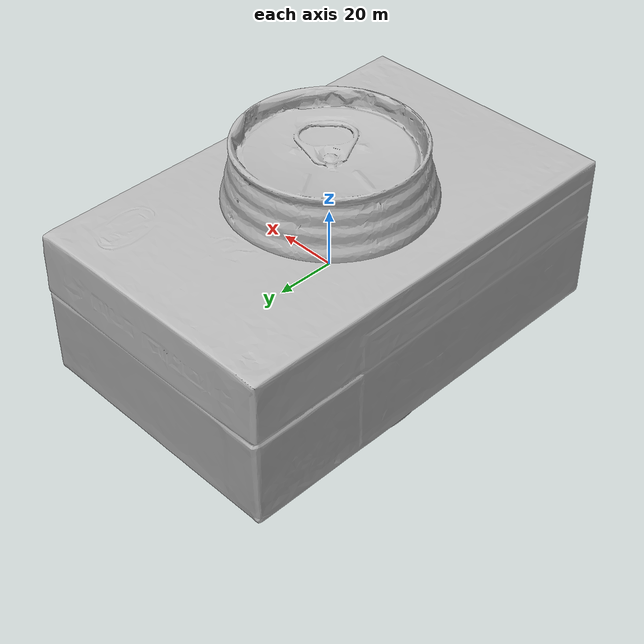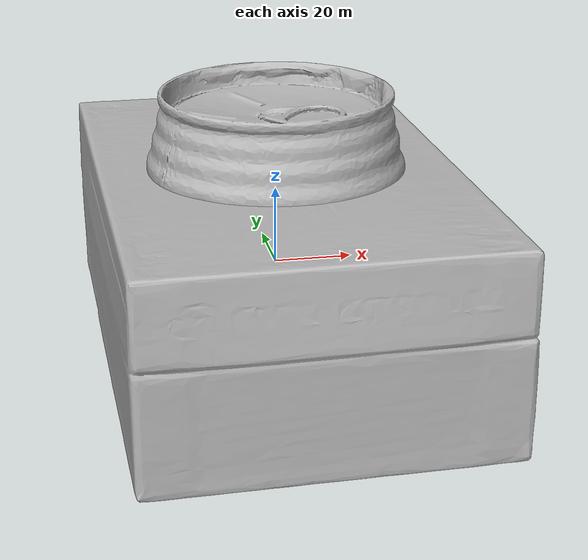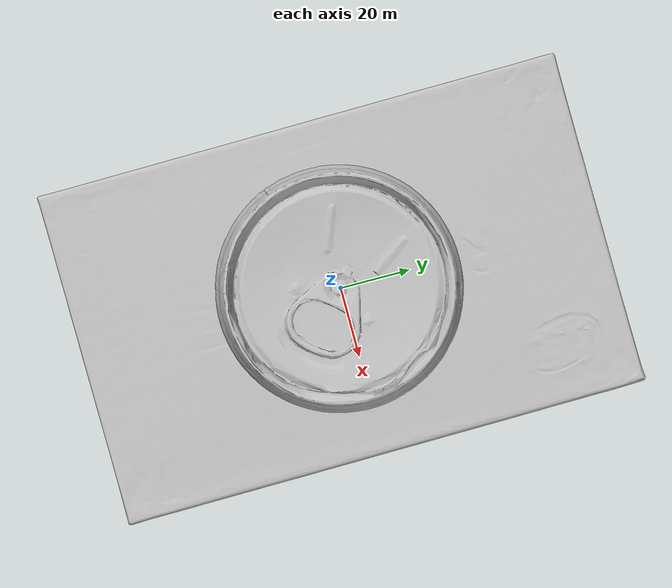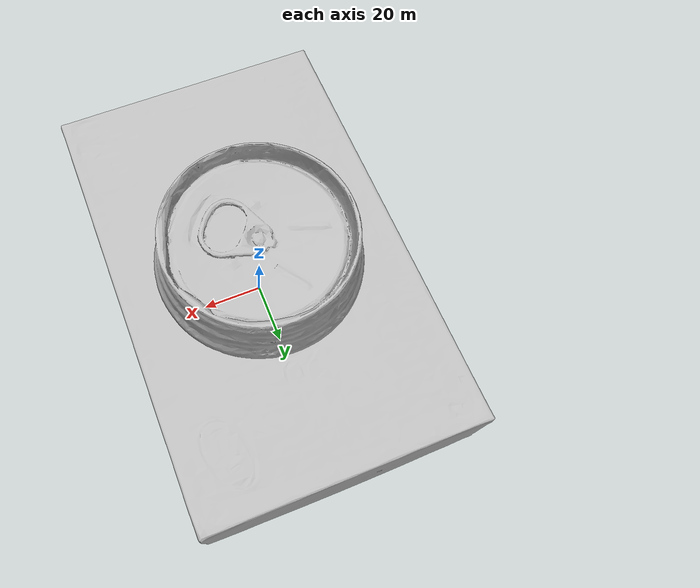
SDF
<sdf version="1.4">
 <world name="default">
  <light name="light1" type="point">
   <pose>0 0 1 0 0 0</pose>
   <diffuse>3 3 3 1</diffuse>
   <specular>3 3 3 1</specular>
  </light>
  <light name="light2" type="point">
   <pose>0 0.5 2 0 0 0</pose>
   <diffuse>1 1 1 1</diffuse>
   <specular>1 1 1 1</specular>
  </light>
  <light name="light3" type="point">
   <pose>0 0.5 2 0 0 0</pose>
   <diffuse>3 3 3 1</diffuse>
   <specular>3 3 3 1</specular>
  </light>
  <scene><ambient>0.7 0.7 0.7</ambient></scene>
  <model name="box1">
   <link name="link_box1">
    <collision name="default">
     <geometry>
      <mesh><uri>model://realsense_box/collision_meshes/collision.obj</uri><scale>1.0 1.0 1.0</scale></mesh>
     </geometry>
     <surface>
      <friction><ode><mu>0.5</mu><mu2>0.5</mu2></ode></friction>
      <contact><ode><max_vel>0</max_vel><min_depth>0.0001</min_depth><kp>1e8</kp></ode></contact>
     </surface>
    </collision>
    <visual name="default">
     <geometry>
      <mesh><uri>model://realsense_box/visual_meshes/visual.dae</uri><scale>1.0 1.0 1.0</scale></mesh>
     </geometry>
    </visual>
    <inertial>
     <mass>0.9783616662025452</mass>
     <pose>4.0744838770478964e-05 8.587493357481435e-05 -2.4153794583980925e-05 -0.00012602841694551038 -0.006358939977979225 0.005012324824875736</pose>
     <inertia>
      <ixx>0.0009306729</ixx>
      <iyy>0.0019425071</iyy>
      <izz>0.002403061</izz>
      <ixy>0</ixy>
      <ixz>0</ixz>
      <iyz>0</iyz>
     </inertia>
    </inertial>
   </link>
   <pose>0.23074299097061157 0.20486901700496674 0.027315998449921608 -7.906397980248988e-08 2.968943221155182e-08 -1.5704967846046236</pose>
  </model>
  <model name="box2">
   <link name="link_box2">
    <collision name="default">
     <geometry>
      <mesh><uri>model://wooden_puzzle2/collision_meshes/collision.obj</uri><scale>1.0 1.0 1.0</scale></mesh>
     </geometry>
     <surface>
      <friction><ode><mu>0.5</mu><mu2>0.5</mu2></ode></friction>
      <contact><ode><max_vel>0</max_vel><min_depth>0.0001</min_depth><kp>1e8</kp></ode></contact>
     </surface>
    </collision>
    <visual name="default">
     <geometry>
      <mesh><uri>model://wooden_puzzle2/visual_meshes/visual.dae</uri><scale>1.0 1.0 1.0</scale></mesh>
     </geometry>
    </visual>
    <inertial>
     <mass>0.024048319086432457</mass>
     <pose>2.7402536943554878e-05 4.997663199901581e-05 6.587122334167361e-05 -0.19203048535200862 0.6112800928970119 -0.6338660341545117</pose>
     <inertia>
      <ixx>4.470326e-06</ixx>
      <iyy>4.593511e-06</iyy>
      <izz>4.528165e-06</izz>
      <ixy>0</ixy>
      <ixz>0</ixz>
      <iyz>0</iyz>
     </inertia>
    </inertial>
   </link>
   <pose>0.08363001048564911 0.3823893070220947 0.016917729750275612 0.020848949454272035 0.000720640158245975 1.559635724728959</pose>
  </model>
  <model name="can1">
   <link name="link_can1">
    <collision name="default">
     <geometry>
      <mesh><uri>model://redbull/collision_meshes/collision.obj</uri><scale>1.0 1.0 1.0</scale></mesh>
     </geometry>
     <surface>
      <friction><ode><mu>0.5</mu><mu2>0.5</mu2></ode></friction>
      <contact><ode><max_vel>0</max_vel><min_depth>0.0001</min_depth><kp>1e8</kp></ode></contact>
     </surface>
    </collision>
    <visual name="default">
     <geometry>
      <mesh><uri>model://redbull/visual_meshes/visual.dae</uri><scale>1.0 1.0 1.0</scale></mesh>
     </geometry>
    </visual>
    <inertial>
     <mass>0.19214749336242676</mass>
     <pose>-2.212707477156073e-05 -0.00012659536150749773 -0.0006860988214612007 0.0011364686928787662 -0.01080099531045839 0.5859333437288349</pose>
     <inertia>
      <ixx>0.00018066002</ixx>
      <iyy>0.0001808125</iyy>
      <izz>0.0001072083</izz>
      <ixy>0</ixy>
      <ixz>0</ixz>
      <iyz>0</iyz>
     </inertia>
    </inertial>
   </link>
   <pose>0.013647827319800854 -0.16362111270427704 0.046385642141103745 -0.010489363447391598 0.007261421585027538 1.3057739318597812</pose>
  </model>
  <model name="can2">
   <link name="link_can2">
    <collision name="default">
     <geometry>
      <mesh><uri>model://pepsi/collision_meshes/collision.obj</uri><scale>1.0 1.0 1.0</scale></mesh>
     </geometry>
     <surface>
      <friction><ode><mu>0.5</mu><mu2>0.5</mu2></ode></friction>
      <contact><ode><max_vel>0</max_vel><min_depth>0.0001</min_depth><kp>1e8</kp></ode></contact>
     </surface>
    </collision>
    <visual name="default">
     <geometry><mesh><uri>model://pepsi/visual_meshes/visual.dae</uri><scale>1.0 1.0 1.0</scale></mesh></geometry>
    </visual>
    <inertial>
     <mass>0.3079187572002411</mass>
     <pose>-7.5590331107378e-05 2.9931279641459696e-05 -0.0003384356386959553 -0.0010678548810066889 -0.0021735327588889423 0.5674125845328797</pose>
     <inertia>
      <ixx>0.0006134332</ixx>
      <iyy>0.0006129863</iyy>
      <izz>0.0001305606</izz>
      <ixy>0</ixy>
      <ixz>0</ixz>
      <iyz>0</iyz>
     </inertia>
    </inertial>
   </link>
   <pose>0.2704310715198517 -0.09169793874025345 0.074496328830719 -1.9010873647445016e-05 2.000860219916356e-06 1.1430112764738323</pose>
  </model>
  <physics type="ode">
   <max_contacts>50</max_contacts>
   <ode>
    <solver><type>quick</type><iters>75</iters></solver>
    <constraints>
     <contact_max_correcting_vel>0</contact_max_correcting_vel>
     <contact_surface_layer>0</contact_surface_layer>
    </constraints>
   </ode>
  </physics>
 </world>
</sdf>
